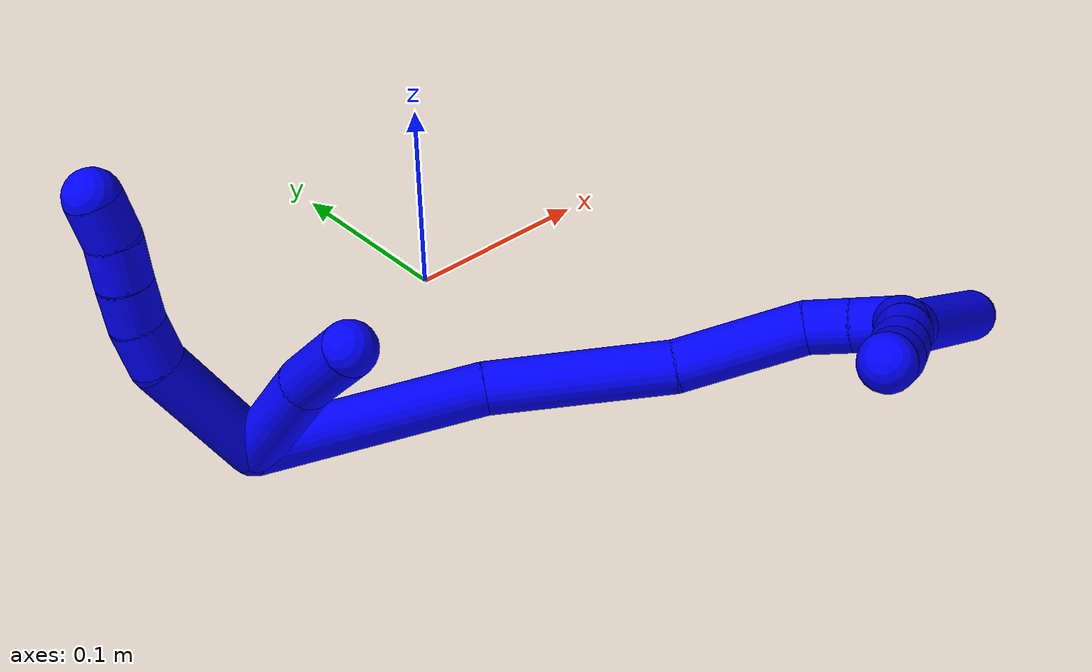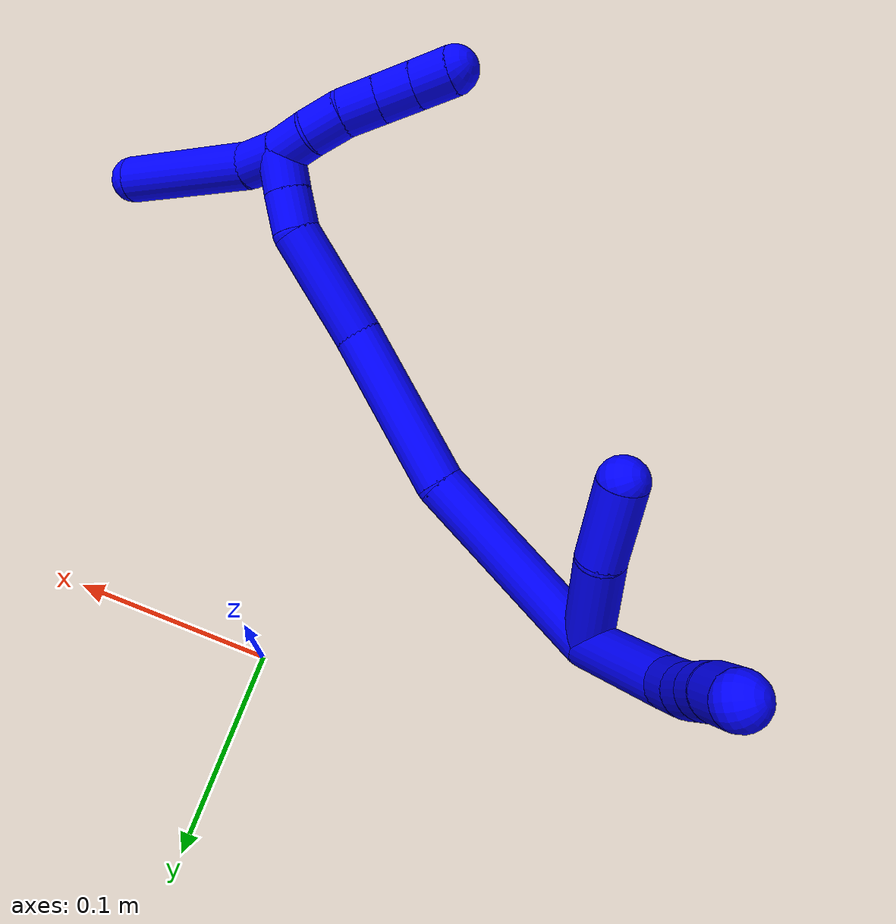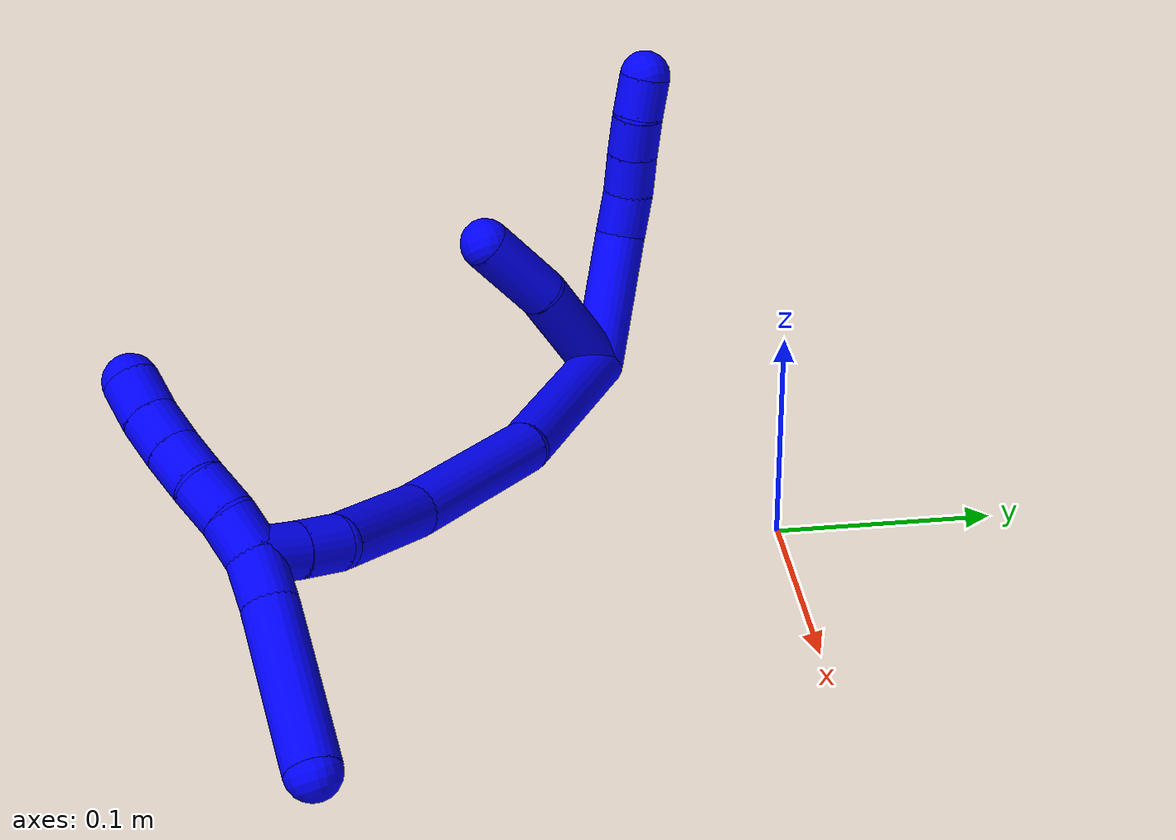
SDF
<sdf version="1.7">
 <world name="default">
  <model name="photoneo_s_sensor">
   <static>1</static>
   <pose>0 0 2 1.57079 1.57079 3.14159</pose>
   <link name="link">
    <inertial><mass>0.1</mass></inertial>
    <sensor name="sensor" type="depth">
     <update_rate>30</update_rate>
     <camera>
      <horizontal_fov>1.22</horizontal_fov>
      <image><width>1920</width><height>1200</height><format>B8G8R8</format></image>
      <clip><near>0.1</near><far>4</far></clip>
      <depth_camera><output>points</output></depth_camera>
     </camera>
     <plugin name="camera_plugin" filename="libgazebo_ros_depth_camera.so">
      <baseline>0.2</baseline>
      <alwaysOn>1</alwaysOn>
      <updateRate>0.0</updateRate>
      <cameraName>camera_ir</cameraName>
      <imageTopicName>/camera/color/image_raw</imageTopicName>
      <cameraInfoTopicName>/camera/color/camera_info</cameraInfoTopicName>
      <depthImageTopicName>/camera/depth/image_raw</depthImageTopicName>
      <depthImageCameraInfoTopicName>/camera/depth/camera_info</depthImageCameraInfoTopicName>
      <pointCloudTopicName>/camera/depth/points</pointCloudTopicName>
      <frameName>fr_optical</frameName>
      <pointCloudCutoff>0.1</pointCloudCutoff>
      <pointCloudCutoffMax>2.0</pointCloudCutoffMax>
      <distortionK1>0</distortionK1>
      <distortionK2>0</distortionK2>
      <distortionK3>0</distortionK3>
      <distortionT1>0</distortionT1>
      <distortionT2>0</distortionT2>
      <CxPrime>0</CxPrime>
      <Cx>0</Cx>
      <Cy>0</Cy>
      <focalLength>0</focalLength>
      <hackBaseline>0</hackBaseline>
     </plugin>
    </sensor>
   </link>
  </model>
  <model name="bin">
   <static>1</static>
   <link name="bottom">
    <collision name="collision-bottom">
     <pose>0 0 -0.01 0 -0 0</pose>
     <geometry><box><size>0.8 0.6 0.02</size></box></geometry>
     <surface>
      <friction><ode><mu>100</mu><mu2>100</mu2></ode></friction>
      <contact><collide_bitmask>65535</collide_bitmask></contact>
     </surface>
    </collision>
   </link>
   <link name="west_wall">
    <collision name="collision-west_wall">
     <pose>-0.41 0 0.1 0 -0 0</pose>
     <geometry><box><size>0.02 0.6 0.2</size></box></geometry>
     <surface>
      <friction><ode><mu>100</mu><mu2>100</mu2></ode></friction>
      <contact><collide_bitmask>65535</collide_bitmask></contact>
     </surface>
    </collision>
   </link>
   <link name="east_wall">
    <collision name="collision-east_wall">
     <pose>0.41 0 0.1 0 -0 0</pose>
     <geometry><box><size>0.02 0.6 0.2</size></box></geometry>
     <surface>
      <friction><ode><mu>100</mu><mu2>100</mu2></ode></friction>
      <contact><collide_bitmask>65535</collide_bitmask></contact>
     </surface>
    </collision>
   </link>
   <link name="south_wall">
    <collision name="collision-south_wall">
     <pose>0 -0.31 0.1 0 -0 0</pose>
     <geometry><box><size>0.8 0.02 0.2</size></box></geometry>
     <surface>
      <friction><ode><mu>100</mu><mu2>100</mu2></ode></friction>
      <contact><collide_bitmask>65535</collide_bitmask></contact>
     </surface>
    </collision>
   </link>
   <link name="north_wall">
    <collision name="collision-north_wall">
     <pose>0 0.31 0.1 0 -0 0</pose>
     <geometry><box><size>0.8 0.02 0.2</size></box></geometry>
     <surface>
      <friction><ode><mu>100</mu><mu2>100</mu2></ode></friction>
      <contact><collide_bitmask>65535</collide_bitmask></contact>
     </surface>
    </collision>
   </link>
  </model>
  <model name="1">
   <static>0</static>
   <link name="1">
    <collision name="collision-cylinder-e_1_2_8">
     <pose>-0.00282 0.015648 0.0292 -0.491943 -0.084924 0.021333</pose>
     <geometry><cylinder><radius>0.0125</radius><length>0.066496</length></cylinder></geometry>
     <surface>
      <friction><ode><mu>1.16</mu><mu2>1.16</mu2><slip1>0</slip1><slip2>0</slip2></ode></friction>
      <contact><ode><kp>1e+06</kp><kd>1</kd><max_vel>0</max_vel><min_depth>0.001</min_depth></ode></contact>
     </surface>
    </collision>
    <visual name="visual-cylinder-e_1_2_8">
     <pose>-0.00282 0.015648 0.0292 -0.491943 -0.084924 0.021333</pose>
     <geometry><cylinder><radius>0.0125</radius><length>0.066496</length></cylinder></geometry>
     <material><ambient>0 0 1 1</ambient></material>
    </visual>
    <collision name="collision-cylinder-e_2_8_9">
     <pose>-0.00332 0.03777 0.067161 -0.636395 0.209853 -0.06935</pose>
     <geometry><cylinder><radius>0.0125</radius><length>0.022277</length></cylinder></geometry>
     <surface>
      <friction><ode><mu>1.16</mu><mu2>1.16</mu2><slip1>0</slip1><slip2>0</slip2></ode></friction>
      <contact><ode><kp>1e+06</kp><kd>1</kd><max_vel>0</max_vel><min_depth>0.001</min_depth></ode></contact>
     </surface>
    </collision>
    <visual name="visual-cylinder-e_2_8_9">
     <pose>-0.00332 0.03777 0.067161 -0.636395 0.209853 -0.06935</pose>
     <geometry><cylinder><radius>0.0125</radius><length>0.022277</length></cylinder></geometry>
     <material><ambient>0 0 1 1</ambient></material>
    </visual>
    <collision name="collision-cylinder-e_3_9_10">
     <pose>0.002634 0.049818 0.083753 -0.618627 0.361382 -0.116628</pose>
     <geometry><cylinder><radius>0.0125</radius><length>0.020552</length></cylinder></geometry>
     <surface>
      <friction><ode><mu>1.16</mu><mu2>1.16</mu2><slip1>0</slip1><slip2>0</slip2></ode></friction>
      <contact><ode><kp>1e+06</kp><kd>1</kd><max_vel>0</max_vel><min_depth>0.001</min_depth></ode></contact>
     </surface>
    </collision>
    <visual name="visual-cylinder-e_3_9_10">
     <pose>0.002634 0.049818 0.083753 -0.618627 0.361382 -0.116628</pose>
     <geometry><cylinder><radius>0.0125</radius><length>0.020552</length></cylinder></geometry>
     <material><ambient>0 0 1 1</ambient></material>
    </visual>
    <collision name="collision-cylinder-e_4_10_11">
     <pose>0.010067 0.061187 0.098924 -0.668201 0.386018 -0.135473</pose>
     <geometry><cylinder><radius>0.0125</radius><length>0.020188</length></cylinder></geometry>
     <surface>
      <friction><ode><mu>1.16</mu><mu2>1.16</mu2><slip1>0</slip1><slip2>0</slip2></ode></friction>
      <contact><ode><kp>1e+06</kp><kd>1</kd><max_vel>0</max_vel><min_depth>0.001</min_depth></ode></contact>
     </surface>
    </collision>
    <visual name="visual-cylinder-e_4_10_11">
     <pose>0.010067 0.061187 0.098924 -0.668201 0.386018 -0.135473</pose>
     <geometry><cylinder><radius>0.0125</radius><length>0.020188</length></cylinder></geometry>
     <material><ambient>0 0 1 1</ambient></material>
    </visual>
    <collision name="collision-cylinder-e_5_11_6">
     <pose>0.016096 0.072916 0.11431 -0.635616 0.219335 -0.072411</pose>
     <geometry><cylinder><radius>0.0125</radius><length>0.020487</length></cylinder></geometry>
     <surface>
      <friction><ode><mu>1.16</mu><mu2>1.16</mu2><slip1>0</slip1><slip2>0</slip2></ode></friction>
      <contact><ode><kp>1e+06</kp><kd>1</kd><max_vel>0</max_vel><min_depth>0.001</min_depth></ode></contact>
     </surface>
    </collision>
    <visual name="visual-cylinder-e_5_11_6">
     <pose>0.016096 0.072916 0.11431 -0.635616 0.219335 -0.072411</pose>
     <geometry><cylinder><radius>0.0125</radius><length>0.020487</length></cylinder></geometry>
     <material><ambient>0 0 1 1</ambient></material>
    </visual>
    <collision name="collision-cylinder-e_1_2_12">
     <pose>0.022729 0.000889 0.01773 -0.050076 0.907724 -0.024432</pose>
     <geometry><cylinder><radius>0.0125</radius><length>0.057681</length></cylinder></geometry>
     <surface>
      <friction><ode><mu>1.16</mu><mu2>1.16</mu2><slip1>0</slip1><slip2>0</slip2></ode></friction>
      <contact><ode><kp>1e+06</kp><kd>1</kd><max_vel>0</max_vel><min_depth>0.001</min_depth></ode></contact>
     </surface>
    </collision>
    <visual name="visual-cylinder-e_1_2_12">
     <pose>0.022729 0.000889 0.01773 -0.050076 0.907724 -0.024432</pose>
     <geometry><cylinder><radius>0.0125</radius><length>0.057681</length></cylinder></geometry>
     <material><ambient>0 0 1 1</ambient></material>
    </visual>
    <collision name="collision-cylinder-e_2_12_5">
     <pose>0.06142 -0.001735 0.0489 0.2556 0.854641 0.1169</pose>
     <geometry><cylinder><radius>0.0125</radius><length>0.042319</length></cylinder></geometry>
     <surface>
      <friction><ode><mu>1.16</mu><mu2>1.16</mu2><slip1>0</slip1><slip2>0</slip2></ode></friction>
      <contact><ode><kp>1e+06</kp><kd>1</kd><max_vel>0</max_vel><min_depth>0.001</min_depth></ode></contact>
     </surface>
    </collision>
    <visual name="visual-cylinder-e_2_12_5">
     <pose>0.06142 -0.001735 0.0489 0.2556 0.854641 0.1169</pose>
     <geometry><cylinder><radius>0.0125</radius><length>0.042319</length></cylinder></geometry>
     <material><ambient>0 0 1 1</ambient></material>
    </visual>
    <collision name="collision-cylinder-e_1_2_13">
     <pose>0.049563 -0.004602 -0.019825 2.91352 1.18116 2.80316</pose>
     <geometry><cylinder><radius>0.0125</radius><length>0.107158</length></cylinder></geometry>
     <surface>
      <friction><ode><mu>1.16</mu><mu2>1.16</mu2><slip1>0</slip1><slip2>0</slip2></ode></friction>
      <contact><ode><kp>1e+06</kp><kd>1</kd><max_vel>0</max_vel><min_depth>0.001</min_depth></ode></contact>
     </surface>
    </collision>
    <visual name="visual-cylinder-e_1_2_13">
     <pose>0.049563 -0.004602 -0.019825 2.91352 1.18116 2.80316</pose>
     <geometry><cylinder><radius>0.0125</radius><length>0.107158</length></cylinder></geometry>
     <material><ambient>0 0 1 1</ambient></material>
    </visual>
    <collision name="collision-cylinder-e_2_13_14">
     <pose>0.140036 -0.021629 -0.049759 2.25374 1.19759 1.92422</pose>
     <geometry><cylinder><radius>0.0125</radius><length>0.087868</length></cylinder></geometry>
     <surface>
      <friction><ode><mu>1.16</mu><mu2>1.16</mu2><slip1>0</slip1><slip2>0</slip2></ode></friction>
      <contact><ode><kp>1e+06</kp><kd>1</kd><max_vel>0</max_vel><min_depth>0.001</min_depth></ode></contact>
     </surface>
    </collision>
    <visual name="visual-cylinder-e_2_13_14">
     <pose>0.140036 -0.021629 -0.049759 2.25374 1.19759 1.92422</pose>
     <geometry><cylinder><radius>0.0125</radius><length>0.087868</length></cylinder></geometry>
     <material><ambient>0 0 1 1</ambient></material>
    </visual>
    <collision name="collision-cylinder-e_3_14_15">
     <pose>0.211394 -0.038209 -0.064162 2.37284 1.37706 2.22783</pose>
     <geometry><cylinder><radius>0.0125</radius><length>0.062058</length></cylinder></geometry>
     <surface>
      <friction><ode><mu>1.16</mu><mu2>1.16</mu2><slip1>0</slip1><slip2>0</slip2></ode></friction>
      <contact><ode><kp>1e+06</kp><kd>1</kd><max_vel>0</max_vel><min_depth>0.001</min_depth></ode></contact>
     </surface>
    </collision>
    <visual name="visual-cylinder-e_3_14_15">
     <pose>0.211394 -0.038209 -0.064162 2.37284 1.37706 2.22783</pose>
     <geometry><cylinder><radius>0.0125</radius><length>0.062058</length></cylinder></geometry>
     <material><ambient>0 0 1 1</ambient></material>
    </visual>
    <collision name="collision-cylinder-e_4_15_16">
     <pose>0.25159 -0.046948 -0.06816 1.50632 1.13021 1.07269</pose>
     <geometry><cylinder><radius>0.0125</radius><length>0.021553</length></cylinder></geometry>
     <surface>
      <friction><ode><mu>1.16</mu><mu2>1.16</mu2><slip1>0</slip1><slip2>0</slip2></ode></friction>
      <contact><ode><kp>1e+06</kp><kd>1</kd><max_vel>0</max_vel><min_depth>0.001</min_depth></ode></contact>
     </surface>
    </collision>
    <visual name="visual-cylinder-e_4_15_16">
     <pose>0.25159 -0.046948 -0.06816 1.50632 1.13021 1.07269</pose>
     <geometry><cylinder><radius>0.0125</radius><length>0.021553</length></cylinder></geometry>
     <material><ambient>0 0 1 1</ambient></material>
    </visual>
    <collision name="collision-cylinder-e_5_16_1">
     <pose>0.270917 -0.056194 -0.067083 1.4047 1.1126 0.968844</pose>
     <geometry><cylinder><radius>0.0125</radius><length>0.021363</length></cylinder></geometry>
     <surface>
      <friction><ode><mu>1.16</mu><mu2>1.16</mu2><slip1>0</slip1><slip2>0</slip2></ode></friction>
      <contact><ode><kp>1e+06</kp><kd>1</kd><max_vel>0</max_vel><min_depth>0.001</min_depth></ode></contact>
     </surface>
    </collision>
    <visual name="visual-cylinder-e_5_16_1">
     <pose>0.270917 -0.056194 -0.067083 1.4047 1.1126 0.968844</pose>
     <geometry><cylinder><radius>0.0125</radius><length>0.021363</length></cylinder></geometry>
     <material><ambient>0 0 1 1</ambient></material>
    </visual>
    <collision name="collision-cylinder-e_1_1_17">
     <pose>0.282322 -0.059614 -0.077367 -3.03002 0.162485 -1.93926</pose>
     <geometry><cylinder><radius>0.0125</radius><length>0.022566</length></cylinder></geometry>
     <surface>
      <friction><ode><mu>1.16</mu><mu2>1.16</mu2><slip1>0</slip1><slip2>0</slip2></ode></friction>
      <contact><ode><kp>1e+06</kp><kd>1</kd><max_vel>0</max_vel><min_depth>0.001</min_depth></ode></contact>
     </surface>
    </collision>
    <visual name="visual-cylinder-e_1_1_17">
     <pose>0.282322 -0.059614 -0.077367 -3.03002 0.162485 -1.93926</pose>
     <geometry><cylinder><radius>0.0125</radius><length>0.022566</length></cylinder></geometry>
     <material><ambient>0 0 1 1</ambient></material>
    </visual>
    <collision name="collision-cylinder-e_2_17_4">
     <pose>0.298252 -0.052012 -0.123923 -2.96422 0.372876 -2.26057</pose>
     <geometry><cylinder><radius>0.0125</radius><length>0.077434</length></cylinder></geometry>
     <surface>
      <friction><ode><mu>1.16</mu><mu2>1.16</mu2><slip1>0</slip1><slip2>0</slip2></ode></friction>
      <contact><ode><kp>1e+06</kp><kd>1</kd><max_vel>0</max_vel><min_depth>0.001</min_depth></ode></contact>
     </surface>
    </collision>
    <visual name="visual-cylinder-e_2_17_4">
     <pose>0.298252 -0.052012 -0.123923 -2.96422 0.372876 -2.26057</pose>
     <geometry><cylinder><radius>0.0125</radius><length>0.077434</length></cylinder></geometry>
     <material><ambient>0 0 1 1</ambient></material>
    </visual>
    <collision name="collision-cylinder-e_1_1_18">
     <pose>0.28073 -0.063807 -0.056751 0.299871 0.02336 0.003529</pose>
     <geometry><cylinder><radius>0.0125</radius><length>0.02</length></cylinder></geometry>
     <surface>
      <friction><ode><mu>1.16</mu><mu2>1.16</mu2><slip1>0</slip1><slip2>0</slip2></ode></friction>
      <contact><ode><kp>1e+06</kp><kd>1</kd><max_vel>0</max_vel><min_depth>0.001</min_depth></ode></contact>
     </surface>
    </collision>
    <visual name="visual-cylinder-e_1_1_18">
     <pose>0.28073 -0.063807 -0.056751 0.299871 0.02336 0.003529</pose>
     <geometry><cylinder><radius>0.0125</radius><length>0.02</length></cylinder></geometry>
     <material><ambient>0 0 1 1</ambient></material>
    </visual>
    <collision name="collision-cylinder-e_2_18_19">
     <pose>0.280662 -0.071207 -0.038248 0.461079 -0.030191 -0.007087</pose>
     <geometry><cylinder><radius>0.0125</radius><length>0.02</length></cylinder></geometry>
     <surface>
      <friction><ode><mu>1.16</mu><mu2>1.16</mu2><slip1>0</slip1><slip2>0</slip2></ode></friction>
      <contact><ode><kp>1e+06</kp><kd>1</kd><max_vel>0</max_vel><min_depth>0.001</min_depth></ode></contact>
     </surface>
    </collision>
    <visual name="visual-cylinder-e_2_18_19">
     <pose>0.280662 -0.071207 -0.038248 0.461079 -0.030191 -0.007087</pose>
     <geometry><cylinder><radius>0.0125</radius><length>0.02</length></cylinder></geometry>
     <material><ambient>0 0 1 1</ambient></material>
    </visual>
    <collision name="collision-cylinder-e_3_19_20">
     <pose>0.278523 -0.080351 -0.020661 0.498205 -0.184792 -0.047134</pose>
     <geometry><cylinder><radius>0.0125</radius><length>0.02</length></cylinder></geometry>
     <surface>
      <friction><ode><mu>1.16</mu><mu2>1.16</mu2><slip1>0</slip1><slip2>0</slip2></ode></friction>
      <contact><ode><kp>1e+06</kp><kd>1</kd><max_vel>0</max_vel><min_depth>0.001</min_depth></ode></contact>
     </surface>
    </collision>
    <visual name="visual-cylinder-e_3_19_20">
     <pose>0.278523 -0.080351 -0.020661 0.498205 -0.184792 -0.047134</pose>
     <geometry><cylinder><radius>0.0125</radius><length>0.02</length></cylinder></geometry>
     <material><ambient>0 0 1 1</ambient></material>
    </visual>
    <collision name="collision-cylinder-e_4_20_21">
     <pose>0.274842 -0.089266 -0.003148 0.44345 -0.185437 -0.041917</pose>
     <geometry><cylinder><radius>0.0125</radius><length>0.02</length></cylinder></geometry>
     <surface>
      <friction><ode><mu>1.16</mu><mu2>1.16</mu2><slip1>0</slip1><slip2>0</slip2></ode></friction>
      <contact><ode><kp>1e+06</kp><kd>1</kd><max_vel>0</max_vel><min_depth>0.001</min_depth></ode></contact>
     </surface>
    </collision>
    <visual name="visual-cylinder-e_4_20_21">
     <pose>0.274842 -0.089266 -0.003148 0.44345 -0.185437 -0.041917</pose>
     <geometry><cylinder><radius>0.0125</radius><length>0.02</length></cylinder></geometry>
     <material><ambient>0 0 1 1</ambient></material>
    </visual>
    <collision name="collision-cylinder-e_5_21_3">
     <pose>0.271236 -0.096575 0.015075 0.319553 -0.177137 -0.028619</pose>
     <geometry><cylinder><radius>0.0125</radius><length>0.02</length></cylinder></geometry>
     <surface>
      <friction><ode><mu>1.16</mu><mu2>1.16</mu2><slip1>0</slip1><slip2>0</slip2></ode></friction>
      <contact><ode><kp>1e+06</kp><kd>1</kd><max_vel>0</max_vel><min_depth>0.001</min_depth></ode></contact>
     </surface>
    </collision>
    <visual name="visual-cylinder-e_5_21_3">
     <pose>0.271236 -0.096575 0.015075 0.319553 -0.177137 -0.028619</pose>
     <geometry><cylinder><radius>0.0125</radius><length>0.02</length></cylinder></geometry>
     <material><ambient>0 0 1 1</ambient></material>
    </visual>
    <collision name="collision-sphere-3">
     <pose>0.269473 -0.099667 0.02442 0 -0 0</pose>
     <geometry><sphere><radius>0.0125</radius></sphere></geometry>
     <surface>
      <friction><ode><mu>1.16</mu><mu2>1.16</mu2><slip1>0</slip1><slip2>0</slip2></ode></friction>
      <contact><ode><kp>1e+06</kp><kd>1</kd><max_vel>0</max_vel><min_depth>0.001</min_depth></ode></contact>
     </surface>
    </collision>
    <visual name="visual-sphere-3">
     <pose>0.269473 -0.099667 0.02442 0 -0 0</pose>
     <geometry><sphere><radius>0.0125</radius></sphere></geometry>
     <material><ambient>0 0 1 1</ambient></material>
    </visual>
    <collision name="collision-sphere-21">
     <pose>0.272998 -0.093483 0.005729 0 -0 0</pose>
     <geometry><sphere><radius>0.0125</radius></sphere></geometry>
     <surface>
      <friction><ode><mu>1.16</mu><mu2>1.16</mu2><slip1>0</slip1><slip2>0</slip2></ode></friction>
      <contact><ode><kp>1e+06</kp><kd>1</kd><max_vel>0</max_vel><min_depth>0.001</min_depth></ode></contact>
     </surface>
    </collision>
    <visual name="visual-sphere-21">
     <pose>0.272998 -0.093483 0.005729 0 -0 0</pose>
     <geometry><sphere><radius>0.0125</radius></sphere></geometry>
     <material><ambient>0 0 1 1</ambient></material>
    </visual>
    <collision name="collision-sphere-20">
     <pose>0.276685 -0.085049 -0.012026 0 -0 0</pose>
     <geometry><sphere><radius>0.0125</radius></sphere></geometry>
     <surface>
      <friction><ode><mu>1.16</mu><mu2>1.16</mu2><slip1>0</slip1><slip2>0</slip2></ode></friction>
      <contact><ode><kp>1e+06</kp><kd>1</kd><max_vel>0</max_vel><min_depth>0.001</min_depth></ode></contact>
     </surface>
    </collision>
    <visual name="visual-sphere-20">
     <pose>0.276685 -0.085049 -0.012026 0 -0 0</pose>
     <geometry><sphere><radius>0.0125</radius></sphere></geometry>
     <material><ambient>0 0 1 1</ambient></material>
    </visual>
    <collision name="collision-sphere-19">
     <pose>0.28036 -0.075654 -0.029296 0 -0 0</pose>
     <geometry><sphere><radius>0.0125</radius></sphere></geometry>
     <surface>
      <friction><ode><mu>1.16</mu><mu2>1.16</mu2><slip1>0</slip1><slip2>0</slip2></ode></friction>
      <contact><ode><kp>1e+06</kp><kd>1</kd><max_vel>0</max_vel><min_depth>0.001</min_depth></ode></contact>
     </surface>
    </collision>
    <visual name="visual-sphere-19">
     <pose>0.28036 -0.075654 -0.029296 0 -0 0</pose>
     <geometry><sphere><radius>0.0125</radius></sphere></geometry>
     <material><ambient>0 0 1 1</ambient></material>
    </visual>
    <collision name="collision-sphere-6">
     <pose>0.018325 0.078852 0.122356 0 -0 0</pose>
     <geometry><sphere><radius>0.0125</radius></sphere></geometry>
     <surface>
      <friction><ode><mu>1.16</mu><mu2>1.16</mu2><slip1>0</slip1><slip2>0</slip2></ode></friction>
      <contact><ode><kp>1e+06</kp><kd>1</kd><max_vel>0</max_vel><min_depth>0.001</min_depth></ode></contact>
     </surface>
    </collision>
    <visual name="visual-sphere-6">
     <pose>0.018325 0.078852 0.122356 0 -0 0</pose>
     <geometry><sphere><radius>0.0125</radius></sphere></geometry>
     <material><ambient>0 0 1 1</ambient></material>
    </visual>
    <collision name="collision-sphere-11">
     <pose>0.013868 0.06698 0.106264 0 -0 0</pose>
     <geometry><sphere><radius>0.0125</radius></sphere></geometry>
     <surface>
      <friction><ode><mu>1.16</mu><mu2>1.16</mu2><slip1>0</slip1><slip2>0</slip2></ode></friction>
      <contact><ode><kp>1e+06</kp><kd>1</kd><max_vel>0</max_vel><min_depth>0.001</min_depth></ode></contact>
     </surface>
    </collision>
    <visual name="visual-sphere-11">
     <pose>0.013868 0.06698 0.106264 0 -0 0</pose>
     <geometry><sphere><radius>0.0125</radius></sphere></geometry>
     <material><ambient>0 0 1 1</ambient></material>
    </visual>
    <collision name="collision-sphere-10">
     <pose>0.006267 0.055393 0.091584 0 -0 0</pose>
     <geometry><sphere><radius>0.0125</radius></sphere></geometry>
     <surface>
      <friction><ode><mu>1.16</mu><mu2>1.16</mu2><slip1>0</slip1><slip2>0</slip2></ode></friction>
      <contact><ode><kp>1e+06</kp><kd>1</kd><max_vel>0</max_vel><min_depth>0.001</min_depth></ode></contact>
     </surface>
    </collision>
    <visual name="visual-sphere-10">
     <pose>0.006267 0.055393 0.091584 0 -0 0</pose>
     <geometry><sphere><radius>0.0125</radius></sphere></geometry>
     <material><ambient>0 0 1 1</ambient></material>
    </visual>
    <collision name="collision-sphere-9">
     <pose>-0.001 0.044244 0.075922 0 -0 0</pose>
     <geometry><sphere><radius>0.0125</radius></sphere></geometry>
     <surface>
      <friction><ode><mu>1.16</mu><mu2>1.16</mu2><slip1>0</slip1><slip2>0</slip2></ode></friction>
      <contact><ode><kp>1e+06</kp><kd>1</kd><max_vel>0</max_vel><min_depth>0.001</min_depth></ode></contact>
     </surface>
    </collision>
    <visual name="visual-sphere-9">
     <pose>-0.001 0.044244 0.075922 0 -0 0</pose>
     <geometry><sphere><radius>0.0125</radius></sphere></geometry>
     <material><ambient>0 0 1 1</ambient></material>
    </visual>
    <collision name="collision-sphere-2">
     <geometry><sphere><radius>0.0125</radius></sphere></geometry>
     <surface>
      <friction><ode><mu>1.16</mu><mu2>1.16</mu2><slip1>0</slip1><slip2>0</slip2></ode></friction>
      <contact><ode><kp>1e+06</kp><kd>1</kd><max_vel>0</max_vel><min_depth>0.001</min_depth></ode></contact>
     </surface>
    </collision>
    <visual name="visual-sphere-2">
     <geometry><sphere><radius>0.0125</radius></sphere></geometry>
     <material><ambient>0 0 1 1</ambient></material>
    </visual>
    <collision name="collision-sphere-8">
     <pose>-0.00564 0.031295 0.058399 0 -0 0</pose>
     <geometry><sphere><radius>0.0125</radius></sphere></geometry>
     <surface>
      <friction><ode><mu>1.16</mu><mu2>1.16</mu2><slip1>0</slip1><slip2>0</slip2></ode></friction>
      <contact><ode><kp>1e+06</kp><kd>1</kd><max_vel>0</max_vel><min_depth>0.001</min_depth></ode></contact>
     </surface>
    </collision>
    <visual name="visual-sphere-8">
     <pose>-0.00564 0.031295 0.058399 0 -0 0</pose>
     <geometry><sphere><radius>0.0125</radius></sphere></geometry>
     <material><ambient>0 0 1 1</ambient></material>
    </visual>
    <collision name="collision-sphere-12">
     <pose>0.045459 0.001777 0.035461 0 -0 0</pose>
     <geometry><sphere><radius>0.0125</radius></sphere></geometry>
     <surface>
      <friction><ode><mu>1.16</mu><mu2>1.16</mu2><slip1>0</slip1><slip2>0</slip2></ode></friction>
      <contact><ode><kp>1e+06</kp><kd>1</kd><max_vel>0</max_vel><min_depth>0.001</min_depth></ode></contact>
     </surface>
    </collision>
    <visual name="visual-sphere-12">
     <pose>0.045459 0.001777 0.035461 0 -0 0</pose>
     <geometry><sphere><radius>0.0125</radius></sphere></geometry>
     <material><ambient>0 0 1 1</ambient></material>
    </visual>
    <collision name="collision-sphere-5">
     <pose>0.077381 -0.005247 0.06234 0 -0 0</pose>
     <geometry><sphere><radius>0.0125</radius></sphere></geometry>
     <surface>
      <friction><ode><mu>1.16</mu><mu2>1.16</mu2><slip1>0</slip1><slip2>0</slip2></ode></friction>
      <contact><ode><kp>1e+06</kp><kd>1</kd><max_vel>0</max_vel><min_depth>0.001</min_depth></ode></contact>
     </surface>
    </collision>
    <visual name="visual-sphere-5">
     <pose>0.077381 -0.005247 0.06234 0 -0 0</pose>
     <geometry><sphere><radius>0.0125</radius></sphere></geometry>
     <material><ambient>0 0 1 1</ambient></material>
    </visual>
    <collision name="collision-sphere-13">
     <pose>0.099126 -0.009203 -0.03965 0 -0 0</pose>
     <geometry><sphere><radius>0.0125</radius></sphere></geometry>
     <surface>
      <friction><ode><mu>1.16</mu><mu2>1.16</mu2><slip1>0</slip1><slip2>0</slip2></ode></friction>
      <contact><ode><kp>1e+06</kp><kd>1</kd><max_vel>0</max_vel><min_depth>0.001</min_depth></ode></contact>
     </surface>
    </collision>
    <visual name="visual-sphere-13">
     <pose>0.099126 -0.009203 -0.03965 0 -0 0</pose>
     <geometry><sphere><radius>0.0125</radius></sphere></geometry>
     <material><ambient>0 0 1 1</ambient></material>
    </visual>
    <collision name="collision-sphere-14">
     <pose>0.180946 -0.034055 -0.059869 0 -0 0</pose>
     <geometry><sphere><radius>0.0125</radius></sphere></geometry>
     <surface>
      <friction><ode><mu>1.16</mu><mu2>1.16</mu2><slip1>0</slip1><slip2>0</slip2></ode></friction>
      <contact><ode><kp>1e+06</kp><kd>1</kd><max_vel>0</max_vel><min_depth>0.001</min_depth></ode></contact>
     </surface>
    </collision>
    <visual name="visual-sphere-14">
     <pose>0.180946 -0.034055 -0.059869 0 -0 0</pose>
     <geometry><sphere><radius>0.0125</radius></sphere></geometry>
     <material><ambient>0 0 1 1</ambient></material>
    </visual>
    <collision name="collision-sphere-15">
     <pose>0.241843 -0.042362 -0.068456 0 -0 0</pose>
     <geometry><sphere><radius>0.0125</radius></sphere></geometry>
     <surface>
      <friction><ode><mu>1.16</mu><mu2>1.16</mu2><slip1>0</slip1><slip2>0</slip2></ode></friction>
      <contact><ode><kp>1e+06</kp><kd>1</kd><max_vel>0</max_vel><min_depth>0.001</min_depth></ode></contact>
     </surface>
    </collision>
    <visual name="visual-sphere-15">
     <pose>0.241843 -0.042362 -0.068456 0 -0 0</pose>
     <geometry><sphere><radius>0.0125</radius></sphere></geometry>
     <material><ambient>0 0 1 1</ambient></material>
    </visual>
    <collision name="collision-sphere-16">
     <pose>0.261337 -0.051534 -0.067864 0 -0 0</pose>
     <geometry><sphere><radius>0.0125</radius></sphere></geometry>
     <surface>
      <friction><ode><mu>1.16</mu><mu2>1.16</mu2><slip1>0</slip1><slip2>0</slip2></ode></friction>
      <contact><ode><kp>1e+06</kp><kd>1</kd><max_vel>0</max_vel><min_depth>0.001</min_depth></ode></contact>
     </surface>
    </collision>
    <visual name="visual-sphere-16">
     <pose>0.261337 -0.051534 -0.067864 0 -0 0</pose>
     <geometry><sphere><radius>0.0125</radius></sphere></geometry>
     <material><ambient>0 0 1 1</ambient></material>
    </visual>
    <collision name="collision-sphere-1">
     <pose>0.280497 -0.060854 -0.066302 0 -0 0</pose>
     <geometry><sphere><radius>0.0125</radius></sphere></geometry>
     <surface>
      <friction><ode><mu>1.16</mu><mu2>1.16</mu2><slip1>0</slip1><slip2>0</slip2></ode></friction>
      <contact><ode><kp>1e+06</kp><kd>1</kd><max_vel>0</max_vel><min_depth>0.001</min_depth></ode></contact>
     </surface>
    </collision>
    <visual name="visual-sphere-1">
     <pose>0.280497 -0.060854 -0.066302 0 -0 0</pose>
     <geometry><sphere><radius>0.0125</radius></sphere></geometry>
     <material><ambient>0 0 1 1</ambient></material>
    </visual>
    <collision name="collision-sphere-18">
     <pose>0.280964 -0.06676 -0.047199 0 -0 0</pose>
     <geometry><sphere><radius>0.0125</radius></sphere></geometry>
     <surface>
      <friction><ode><mu>1.16</mu><mu2>1.16</mu2><slip1>0</slip1><slip2>0</slip2></ode></friction>
      <contact><ode><kp>1e+06</kp><kd>1</kd><max_vel>0</max_vel><min_depth>0.001</min_depth></ode></contact>
     </surface>
    </collision>
    <visual name="visual-sphere-18">
     <pose>0.280964 -0.06676 -0.047199 0 -0 0</pose>
     <geometry><sphere><radius>0.0125</radius></sphere></geometry>
     <material><ambient>0 0 1 1</ambient></material>
    </visual>
    <collision name="collision-sphere-17">
     <pose>0.284147 -0.058374 -0.088432 0 -0 0</pose>
     <geometry><sphere><radius>0.0125</radius></sphere></geometry>
     <surface>
      <friction><ode><mu>1.16</mu><mu2>1.16</mu2><slip1>0</slip1><slip2>0</slip2></ode></friction>
      <contact><ode><kp>1e+06</kp><kd>1</kd><max_vel>0</max_vel><min_depth>0.001</min_depth></ode></contact>
     </surface>
    </collision>
    <visual name="visual-sphere-17">
     <pose>0.284147 -0.058374 -0.088432 0 -0 0</pose>
     <geometry><sphere><radius>0.0125</radius></sphere></geometry>
     <material><ambient>0 0 1 1</ambient></material>
    </visual>
    <collision name="collision-sphere-4">
     <pose>0.312356 -0.04565 -0.159414 0 -0 0</pose>
     <geometry><sphere><radius>0.0125</radius></sphere></geometry>
     <surface>
      <friction><ode><mu>1.16</mu><mu2>1.16</mu2><slip1>0</slip1><slip2>0</slip2></ode></friction>
      <contact><ode><kp>1e+06</kp><kd>1</kd><max_vel>0</max_vel><min_depth>0.001</min_depth></ode></contact>
     </surface>
    </collision>
    <visual name="visual-sphere-4">
     <pose>0.312356 -0.04565 -0.159414 0 -0 0</pose>
     <geometry><sphere><radius>0.0125</radius></sphere></geometry>
     <material><ambient>0 0 1 1</ambient></material>
    </visual>
    <inertial>
     <pose>0.137821 -0.019682 -0.018942 0 -0 0</pose>
     <mass>0.75</mass>
     <inertia>
      <ixx>2.2e-05</ixx>
      <ixy>0</ixy>
      <ixz>0</ixz>
      <iyy>0.000281</iyy>
      <iyz>0</iyz>
      <izz>-0.000194</izz>
     </inertia>
    </inertial>
   </link>
   <pose>-0.147697 -0.064169 0.011495 0.566396 -0.470894 -0.586285</pose>
  </model>
 </world>
</sdf>
